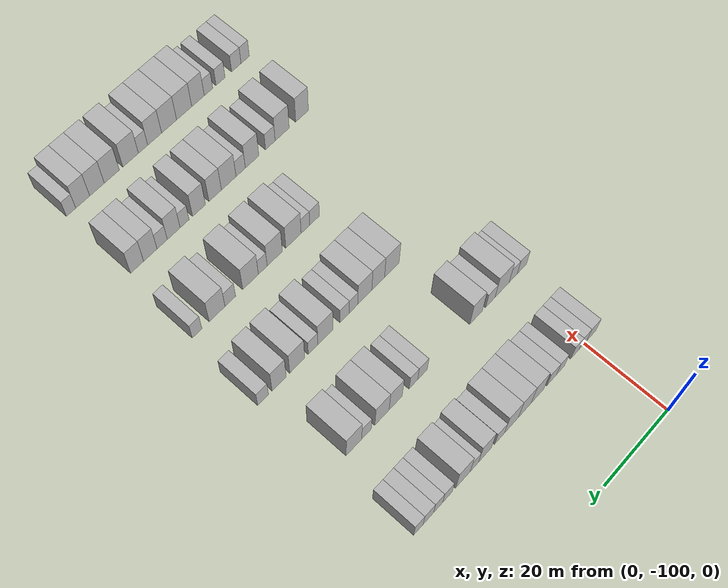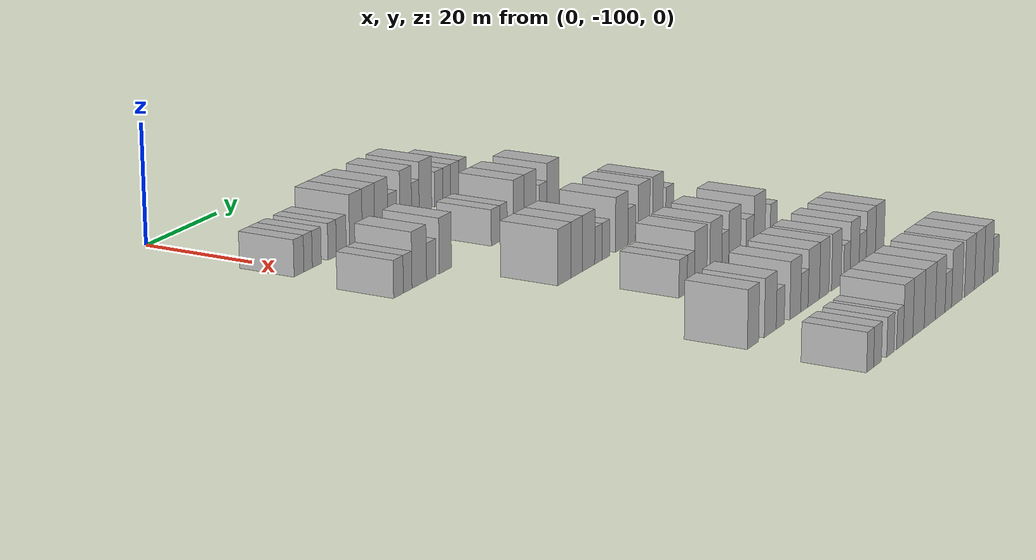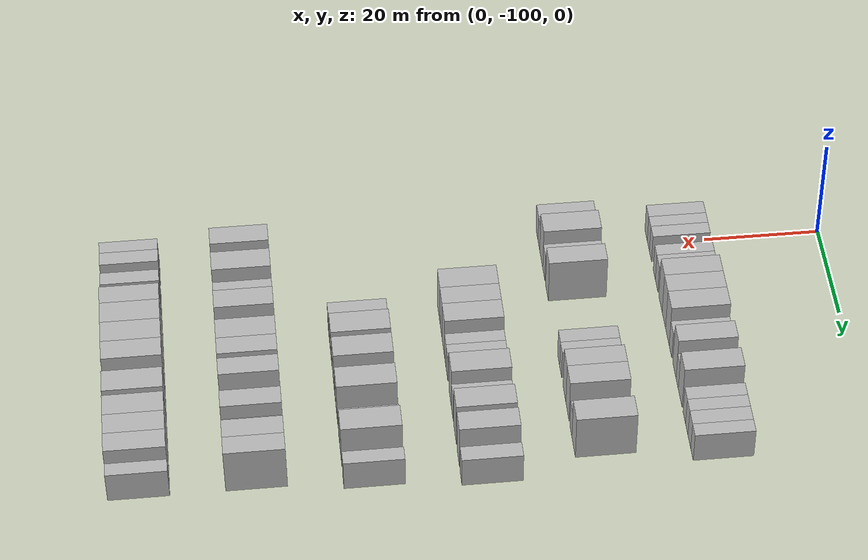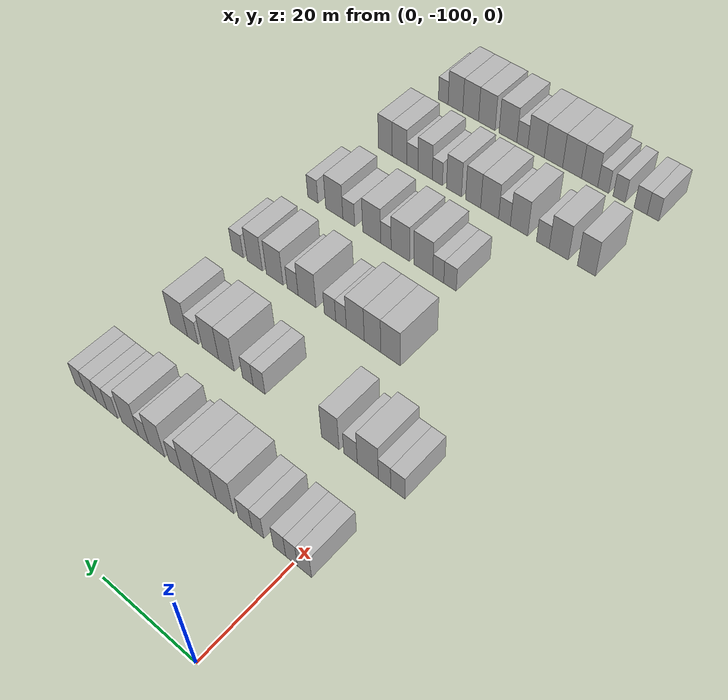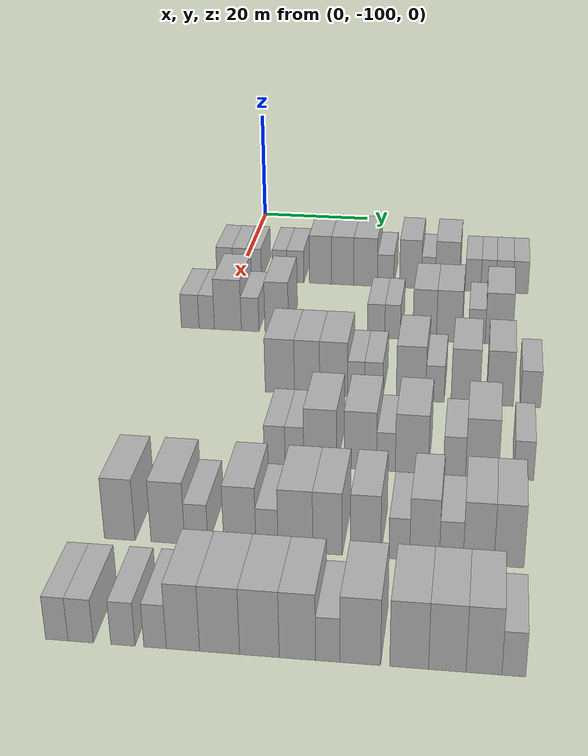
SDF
<sdf version="1.6">
 <world name="default">
  <model name="building_62">
   <static>1</static>
   <pose>25.0000 -102.1575 0 0.000000 0.000000 0.000000</pose>
   <link name="link">
    <pose>0 0 3.00 0 0 0</pose>
    <collision name="collision"><geometry><box><size>10.0000 2.8678 6.0000</size></box></geometry></collision>
    <visual name="visual">
     <cast_shadows>0</cast_shadows>
     <geometry><box><size>10.0000 2.8678 6.0000</size></box></geometry>
     <material>
      <script>
       <uri>model://HANNAS_wall/materials/scripts</uri>
       <uri>model://HANNAS_wall/materials/textures</uri>
       <name>vrc/HANNAS_wall</name>
      </script>
     </material>
    </visual>
   </link>
  </model>
  <model name="building_63">
   <static>1</static>
   <pose>25.0000 -99.5083 0 0.000000 0.000000 0.000000</pose>
   <link name="link">
    <pose>0 0 3.00 0 0 0</pose>
    <collision name="collision"><geometry><box><size>10.0000 2.4305 6.0000</size></box></geometry></collision>
    <visual name="visual">
     <cast_shadows>0</cast_shadows>
     <geometry><box><size>10.0000 2.4305 6.0000</size></box></geometry>
     <material>
      <script>
       <uri>model://HANNAS_wall/materials/scripts</uri>
       <uri>model://HANNAS_wall/materials/textures</uri>
       <name>vrc/HANNAS_wall</name>
      </script>
     </material>
    </visual>
   </link>
  </model>
  <model name="building_64">
   <static>1</static>
   <pose>25.0000 -96.9823 0 0.000000 0.000000 0.000000</pose>
   <link name="link">
    <pose>0 0 3.00 0 0 0</pose>
    <collision name="collision"><geometry><box><size>10.0000 2.6214 6.0000</size></box></geometry></collision>
    <visual name="visual">
     <cast_shadows>0</cast_shadows>
     <geometry><box><size>10.0000 2.6214 6.0000</size></box></geometry>
     <material>
      <script>
       <uri>model://HANNAS_wall/materials/scripts</uri>
       <uri>model://HANNAS_wall/materials/textures</uri>
       <name>vrc/HANNAS_wall</name>
      </script>
     </material>
    </visual>
   </link>
  </model>
  <model name="building_65">
   <static>1</static>
   <pose>25.0000 -92.4248 0 0.000000 0.000000 0.000000</pose>
   <link name="link">
    <pose>0 0 3.00 0 0 0</pose>
    <collision name="collision"><geometry><box><size>10.0000 2.4937 6.0000</size></box></geometry></collision>
    <visual name="visual">
     <cast_shadows>0</cast_shadows>
     <geometry><box><size>10.0000 2.4937 6.0000</size></box></geometry>
     <material>
      <script>
       <uri>model://HANNAS_wall/materials/scripts</uri>
       <uri>model://HANNAS_wall/materials/textures</uri>
       <name>vrc/HANNAS_wall</name>
      </script>
     </material>
    </visual>
   </link>
  </model>
  <model name="building_66">
   <static>1</static>
   <pose>25.0000 -89.6895 0 0.000000 0.000000 0.000000</pose>
   <link name="link">
    <pose>0 0 3.00 0 0 0</pose>
    <collision name="collision"><geometry><box><size>10.0000 2.9769 6.0000</size></box></geometry></collision>
    <visual name="visual">
     <cast_shadows>0</cast_shadows>
     <geometry><box><size>10.0000 2.9769 6.0000</size></box></geometry>
     <material>
      <script>
       <uri>model://HANNAS_wall/materials/scripts</uri>
       <uri>model://HANNAS_wall/materials/textures</uri>
       <name>vrc/HANNAS_wall</name>
      </script>
     </material>
    </visual>
   </link>
  </model>
  <model name="building_67">
   <static>1</static>
   <pose>25.0000 -85.2554 0 0.000000 0.000000 0.000000</pose>
   <link name="link">
    <pose>0 0 4.50 0 0 0</pose>
    <collision name="collision"><geometry><box><size>10.0000 3.8913 9.0000</size></box></geometry></collision>
    <visual name="visual">
     <cast_shadows>0</cast_shadows>
     <geometry><box><size>10.0000 3.8913 9.0000</size></box></geometry>
     <material>
      <script>
       <uri>model://HANNAS_wall/materials/scripts</uri>
       <uri>model://HANNAS_wall/materials/textures</uri>
       <name>vrc/HANNAS_wall</name>
      </script>
     </material>
    </visual>
   </link>
  </model>
  <model name="building_68">
   <static>1</static>
   <pose>25.0000 -81.3794 0 0.000000 0.000000 0.000000</pose>
   <link name="link">
    <pose>0 0 4.50 0 0 0</pose>
    <collision name="collision"><geometry><box><size>10.0000 3.8607 9.0000</size></box></geometry></collision>
    <visual name="visual">
     <cast_shadows>0</cast_shadows>
     <geometry><box><size>10.0000 3.8607 9.0000</size></box></geometry>
     <material>
      <script>
       <uri>model://HANNAS_wall/materials/scripts</uri>
       <uri>model://HANNAS_wall/materials/textures</uri>
       <name>vrc/HANNAS_wall</name>
      </script>
     </material>
    </visual>
   </link>
  </model>
  <model name="building_69">
   <static>1</static>
   <pose>25.0000 -77.3965 0 0.000000 0.000000 0.000000</pose>
   <link name="link">
    <pose>0 0 4.50 0 0 0</pose>
    <collision name="collision"><geometry><box><size>10.0000 4.1051 9.0000</size></box></geometry></collision>
    <visual name="visual">
     <cast_shadows>0</cast_shadows>
     <geometry><box><size>10.0000 4.1051 9.0000</size></box></geometry>
     <material>
      <script>
       <uri>model://HANNAS_wall/materials/scripts</uri>
       <uri>model://HANNAS_wall/materials/textures</uri>
       <name>vrc/HANNAS_wall</name>
      </script>
     </material>
    </visual>
   </link>
  </model>
  <model name="building_70">
   <static>1</static>
   <pose>25.0000 -73.9248 0 0.000000 0.000000 0.000000</pose>
   <link name="link">
    <pose>0 0 3.00 0 0 0</pose>
    <collision name="collision"><geometry><box><size>10.0000 2.8384 6.0000</size></box></geometry></collision>
    <visual name="visual">
     <cast_shadows>0</cast_shadows>
     <geometry><box><size>10.0000 2.8384 6.0000</size></box></geometry>
     <material>
      <script>
       <uri>model://HANNAS_wall/materials/scripts</uri>
       <uri>model://HANNAS_wall/materials/textures</uri>
       <name>vrc/HANNAS_wall</name>
      </script>
     </material>
    </visual>
   </link>
  </model>
  <model name="building_71">
   <static>1</static>
   <pose>25.0000 -69.6170 0 0.000000 0.000000 0.000000</pose>
   <link name="link">
    <pose>0 0 4.50 0 0 0</pose>
    <collision name="collision"><geometry><box><size>10.0000 3.7770 9.0000</size></box></geometry></collision>
    <visual name="visual">
     <cast_shadows>0</cast_shadows>
     <geometry><box><size>10.0000 3.7770 9.0000</size></box></geometry>
     <material>
      <script>
       <uri>model://HANNAS_wall/materials/scripts</uri>
       <uri>model://HANNAS_wall/materials/textures</uri>
       <name>vrc/HANNAS_wall</name>
      </script>
     </material>
    </visual>
   </link>
  </model>
  <model name="building_72">
   <static>1</static>
   <pose>25.0000 -66.5165 0 0.000000 0.000000 0.000000</pose>
   <link name="link">
    <pose>0 0 3.00 0 0 0</pose>
    <collision name="collision"><geometry><box><size>10.0000 2.4241 6.0000</size></box></geometry></collision>
    <visual name="visual">
     <cast_shadows>0</cast_shadows>
     <geometry><box><size>10.0000 2.4241 6.0000</size></box></geometry>
     <material>
      <script>
       <uri>model://HANNAS_wall/materials/scripts</uri>
       <uri>model://HANNAS_wall/materials/textures</uri>
       <name>vrc/HANNAS_wall</name>
      </script>
     </material>
    </visual>
   </link>
  </model>
  <model name="building_73">
   <static>1</static>
   <pose>25.0000 -63.2400 0 0.000000 0.000000 0.000000</pose>
   <link name="link">
    <pose>0 0 4.50 0 0 0</pose>
    <collision name="collision"><geometry><box><size>10.0000 4.1287 9.0000</size></box></geometry></collision>
    <visual name="visual">
     <cast_shadows>0</cast_shadows>
     <geometry><box><size>10.0000 4.1287 9.0000</size></box></geometry>
     <material>
      <script>
       <uri>model://HANNAS_wall/materials/scripts</uri>
       <uri>model://HANNAS_wall/materials/textures</uri>
       <name>vrc/HANNAS_wall</name>
      </script>
     </material>
    </visual>
   </link>
  </model>
  <model name="building_74">
   <static>1</static>
   <pose>25.0000 -58.8305 0 0.000000 0.000000 0.000000</pose>
   <link name="link">
    <pose>0 0 3.00 0 0 0</pose>
    <collision name="collision"><geometry><box><size>10.0000 2.6903 6.0000</size></box></geometry></collision>
    <visual name="visual">
     <cast_shadows>0</cast_shadows>
     <geometry><box><size>10.0000 2.6903 6.0000</size></box></geometry>
     <material>
      <script>
       <uri>model://HANNAS_wall/materials/scripts</uri>
       <uri>model://HANNAS_wall/materials/textures</uri>
       <name>vrc/HANNAS_wall</name>
      </script>
     </material>
    </visual>
   </link>
  </model>
  <model name="building_75">
   <static>1</static>
   <pose>25.0000 -56.2047 0 0.000000 0.000000 0.000000</pose>
   <link name="link">
    <pose>0 0 3.00 0 0 0</pose>
    <collision name="collision"><geometry><box><size>10.0000 2.5614 6.0000</size></box></geometry></collision>
    <visual name="visual">
     <cast_shadows>0</cast_shadows>
     <geometry><box><size>10.0000 2.5614 6.0000</size></box></geometry>
     <material>
      <script>
       <uri>model://HANNAS_wall/materials/scripts</uri>
       <uri>model://HANNAS_wall/materials/textures</uri>
       <name>vrc/HANNAS_wall</name>
      </script>
     </material>
    </visual>
   </link>
  </model>
  <model name="building_76">
   <static>1</static>
   <pose>25.0000 -53.4723 0 0.000000 0.000000 0.000000</pose>
   <link name="link">
    <pose>0 0 3.00 0 0 0</pose>
    <collision name="collision"><geometry><box><size>10.0000 2.9032 6.0000</size></box></geometry></collision>
    <visual name="visual">
     <cast_shadows>0</cast_shadows>
     <geometry><box><size>10.0000 2.9032 6.0000</size></box></geometry>
     <material>
      <script>
       <uri>model://HANNAS_wall/materials/scripts</uri>
       <uri>model://HANNAS_wall/materials/textures</uri>
       <name>vrc/HANNAS_wall</name>
      </script>
     </material>
    </visual>
   </link>
  </model>
  <model name="building_77">
   <static>1</static>
   <pose>25.0000 -50.7224 0 0.000000 0.000000 0.000000</pose>
   <link name="link">
    <pose>0 0 3.00 0 0 0</pose>
    <collision name="collision"><geometry><box><size>10.0000 2.5966 6.0000</size></box></geometry></collision>
    <visual name="visual">
     <cast_shadows>0</cast_shadows>
     <geometry><box><size>10.0000 2.5966 6.0000</size></box></geometry>
     <material>
      <script>
       <uri>model://HANNAS_wall/materials/scripts</uri>
       <uri>model://HANNAS_wall/materials/textures</uri>
       <name>vrc/HANNAS_wall</name>
      </script>
     </material>
    </visual>
   </link>
  </model>
  <model name="building_244">
   <static>1</static>
   <pose>44.0000 -104.2253 0 0.000000 0.000000 0.000000</pose>
   <link name="link">
    <pose>0 0 3.00 0 0 0</pose>
    <collision name="collision"><geometry><box><size>10.0000 2.9297 6.0000</size></box></geometry></collision>
    <visual name="visual">
     <cast_shadows>0</cast_shadows>
     <geometry><box><size>10.0000 2.9297 6.0000</size></box></geometry>
     <material>
      <script>
       <uri>model://HANNAS_wall/materials/scripts</uri>
       <uri>model://HANNAS_wall/materials/textures</uri>
       <name>vrc/HANNAS_wall</name>
      </script>
     </material>
    </visual>
   </link>
  </model>
  <model name="building_245">
   <static>1</static>
   <pose>44.0000 -101.4820 0 0.000000 0.000000 0.000000</pose>
   <link name="link">
    <pose>0 0 3.00 0 0 0</pose>
    <collision name="collision"><geometry><box><size>10.0000 2.5571 6.0000</size></box></geometry></collision>
    <visual name="visual">
     <cast_shadows>0</cast_shadows>
     <geometry><box><size>10.0000 2.5571 6.0000</size></box></geometry>
     <material>
      <script>
       <uri>model://HANNAS_wall/materials/scripts</uri>
       <uri>model://HANNAS_wall/materials/textures</uri>
       <name>vrc/HANNAS_wall</name>
      </script>
     </material>
    </visual>
   </link>
  </model>
  <model name="building_246">
   <static>1</static>
   <pose>44.0000 -97.9860 0 0.000000 0.000000 0.000000</pose>
   <link name="link">
    <pose>0 0 4.50 0 0 0</pose>
    <collision name="collision"><geometry><box><size>10.0000 4.4347 9.0000</size></box></geometry></collision>
    <visual name="visual">
     <cast_shadows>0</cast_shadows>
     <geometry><box><size>10.0000 4.4347 9.0000</size></box></geometry>
     <material>
      <script>
       <uri>model://HANNAS_wall/materials/scripts</uri>
       <uri>model://HANNAS_wall/materials/textures</uri>
       <name>vrc/HANNAS_wall</name>
      </script>
     </material>
    </visual>
   </link>
  </model>
  <model name="building_247">
   <static>1</static>
   <pose>44.0000 -94.3236 0 0.000000 0.000000 0.000000</pose>
   <link name="link">
    <pose>0 0 3.00 0 0 0</pose>
    <collision name="collision"><geometry><box><size>10.0000 2.8900 6.0000</size></box></geometry></collision>
    <visual name="visual">
     <cast_shadows>0</cast_shadows>
     <geometry><box><size>10.0000 2.8900 6.0000</size></box></geometry>
     <material>
      <script>
       <uri>model://HANNAS_wall/materials/scripts</uri>
       <uri>model://HANNAS_wall/materials/textures</uri>
       <name>vrc/HANNAS_wall</name>
      </script>
     </material>
    </visual>
   </link>
  </model>
  <model name="building_248">
   <static>1</static>
   <pose>44.0000 -89.9534 0 0.000000 0.000000 0.000000</pose>
   <link name="link">
    <pose>0 0 4.50 0 0 0</pose>
    <collision name="collision"><geometry><box><size>10.0000 3.8505 9.0000</size></box></geometry></collision>
    <visual name="visual">
     <cast_shadows>0</cast_shadows>
     <geometry><box><size>10.0000 3.8505 9.0000</size></box></geometry>
     <material>
      <script>
       <uri>model://HANNAS_wall/materials/scripts</uri>
       <uri>model://HANNAS_wall/materials/textures</uri>
       <name>vrc/HANNAS_wall</name>
      </script>
     </material>
    </visual>
   </link>
  </model>
  <model name="building_249">
   <static>1</static>
   <pose>44.0000 -73.8384 0 0.000000 0.000000 0.000000</pose>
   <link name="link">
    <pose>0 0 3.00 0 0 0</pose>
    <collision name="collision"><geometry><box><size>10.0000 2.7932 6.0000</size></box></geometry></collision>
    <visual name="visual">
     <cast_shadows>0</cast_shadows>
     <geometry><box><size>10.0000 2.7932 6.0000</size></box></geometry>
     <material>
      <script>
       <uri>model://HANNAS_wall/materials/scripts</uri>
       <uri>model://HANNAS_wall/materials/textures</uri>
       <name>vrc/HANNAS_wall</name>
      </script>
     </material>
    </visual>
   </link>
  </model>
  <model name="building_250">
   <static>1</static>
   <pose>44.0000 -71.1881 0 0.000000 0.000000 0.000000</pose>
   <link name="link">
    <pose>0 0 3.00 0 0 0</pose>
    <collision name="collision"><geometry><box><size>10.0000 2.5074 6.0000</size></box></geometry></collision>
    <visual name="visual">
     <cast_shadows>0</cast_shadows>
     <geometry><box><size>10.0000 2.5074 6.0000</size></box></geometry>
     <material>
      <script>
       <uri>model://HANNAS_wall/materials/scripts</uri>
       <uri>model://HANNAS_wall/materials/textures</uri>
       <name>vrc/HANNAS_wall</name>
      </script>
     </material>
    </visual>
   </link>
  </model>
  <model name="building_251">
   <static>1</static>
   <pose>44.0000 -66.0560 0 0.000000 0.000000 0.000000</pose>
   <link name="link">
    <pose>0 0 4.50 0 0 0</pose>
    <collision name="collision"><geometry><box><size>10.0000 3.7569 9.0000</size></box></geometry></collision>
    <visual name="visual">
     <cast_shadows>0</cast_shadows>
     <geometry><box><size>10.0000 3.7569 9.0000</size></box></geometry>
     <material>
      <script>
       <uri>model://HANNAS_wall/materials/scripts</uri>
       <uri>model://HANNAS_wall/materials/textures</uri>
       <name>vrc/HANNAS_wall</name>
      </script>
     </material>
    </visual>
   </link>
  </model>
  <model name="building_252">
   <static>1</static>
   <pose>44.0000 -62.1483 0 0.000000 0.000000 0.000000</pose>
   <link name="link">
    <pose>0 0 4.50 0 0 0</pose>
    <collision name="collision"><geometry><box><size>10.0000 4.0585 9.0000</size></box></geometry></collision>
    <visual name="visual">
     <cast_shadows>0</cast_shadows>
     <geometry><box><size>10.0000 4.0585 9.0000</size></box></geometry>
     <material>
      <script>
       <uri>model://HANNAS_wall/materials/scripts</uri>
       <uri>model://HANNAS_wall/materials/textures</uri>
       <name>vrc/HANNAS_wall</name>
      </script>
     </material>
    </visual>
   </link>
  </model>
  <model name="building_253">
   <static>1</static>
   <pose>44.0000 -57.7681 0 0.000000 0.000000 0.000000</pose>
   <link name="link">
    <pose>0 0 3.00 0 0 0</pose>
    <collision name="collision"><geometry><box><size>10.0000 2.7018 6.0000</size></box></geometry></collision>
    <visual name="visual">
     <cast_shadows>0</cast_shadows>
     <geometry><box><size>10.0000 2.7018 6.0000</size></box></geometry>
     <material>
      <script>
       <uri>model://HANNAS_wall/materials/scripts</uri>
       <uri>model://HANNAS_wall/materials/textures</uri>
       <name>vrc/HANNAS_wall</name>
      </script>
     </material>
    </visual>
   </link>
  </model>
  <model name="building_254">
   <static>1</static>
   <pose>44.0000 -54.2494 0 0.000000 0.000000 0.000000</pose>
   <link name="link">
    <pose>0 0 4.50 0 0 0</pose>
    <collision name="collision"><geometry><box><size>10.0000 4.3356 9.0000</size></box></geometry></collision>
    <visual name="visual">
     <cast_shadows>0</cast_shadows>
     <geometry><box><size>10.0000 4.3356 9.0000</size></box></geometry>
     <material>
      <script>
       <uri>model://HANNAS_wall/materials/scripts</uri>
       <uri>model://HANNAS_wall/materials/textures</uri>
       <name>vrc/HANNAS_wall</name>
      </script>
     </material>
    </visual>
   </link>
  </model>
  <model name="building_406">
   <static>1</static>
   <pose>63.0000 -86.4726 0 0.000000 0.000000 0.000000</pose>
   <link name="link">
    <pose>0 0 4.50 0 0 0</pose>
    <collision name="collision"><geometry><box><size>10.0000 4.3871 9.0000</size></box></geometry></collision>
    <visual name="visual">
     <cast_shadows>0</cast_shadows>
     <geometry><box><size>10.0000 4.3871 9.0000</size></box></geometry>
     <material>
      <script>
       <uri>model://HANNAS_wall/materials/scripts</uri>
       <uri>model://HANNAS_wall/materials/textures</uri>
       <name>vrc/HANNAS_wall</name>
      </script>
     </material>
    </visual>
   </link>
  </model>
  <model name="building_407">
   <static>1</static>
   <pose>63.0000 -82.3830 0 0.000000 0.000000 0.000000</pose>
   <link name="link">
    <pose>0 0 4.50 0 0 0</pose>
    <collision name="collision"><geometry><box><size>10.0000 3.7921 9.0000</size></box></geometry></collision>
    <visual name="visual">
     <cast_shadows>0</cast_shadows>
     <geometry><box><size>10.0000 3.7921 9.0000</size></box></geometry>
     <material>
      <script>
       <uri>model://HANNAS_wall/materials/scripts</uri>
       <uri>model://HANNAS_wall/materials/textures</uri>
       <name>vrc/HANNAS_wall</name>
      </script>
     </material>
    </visual>
   </link>
  </model>
  <model name="building_408">
   <static>1</static>
   <pose>63.0000 -78.4022 0 0.000000 0.000000 0.000000</pose>
   <link name="link">
    <pose>0 0 4.50 0 0 0</pose>
    <collision name="collision"><geometry><box><size>10.0000 4.1696 9.0000</size></box></geometry></collision>
    <visual name="visual">
     <cast_shadows>0</cast_shadows>
     <geometry><box><size>10.0000 4.1696 9.0000</size></box></geometry>
     <material>
      <script>
       <uri>model://HANNAS_wall/materials/scripts</uri>
       <uri>model://HANNAS_wall/materials/textures</uri>
       <name>vrc/HANNAS_wall</name>
      </script>
     </material>
    </visual>
   </link>
  </model>
  <model name="building_409">
   <static>1</static>
   <pose>63.0000 -75.0799 0 0.000000 0.000000 0.000000</pose>
   <link name="link">
    <pose>0 0 3.00 0 0 0</pose>
    <collision name="collision"><geometry><box><size>10.0000 2.4748 6.0000</size></box></geometry></collision>
    <visual name="visual">
     <cast_shadows>0</cast_shadows>
     <geometry><box><size>10.0000 2.4748 6.0000</size></box></geometry>
     <material>
      <script>
       <uri>model://HANNAS_wall/materials/scripts</uri>
       <uri>model://HANNAS_wall/materials/textures</uri>
       <name>vrc/HANNAS_wall</name>
      </script>
     </material>
    </visual>
   </link>
  </model>
  <model name="building_410">
   <static>1</static>
   <pose>63.0000 -72.4850 0 0.000000 0.000000 0.000000</pose>
   <link name="link">
    <pose>0 0 3.00 0 0 0</pose>
    <collision name="collision"><geometry><box><size>10.0000 2.7151 6.0000</size></box></geometry></collision>
    <visual name="visual">
     <cast_shadows>0</cast_shadows>
     <geometry><box><size>10.0000 2.7151 6.0000</size></box></geometry>
     <material>
      <script>
       <uri>model://HANNAS_wall/materials/scripts</uri>
       <uri>model://HANNAS_wall/materials/textures</uri>
       <name>vrc/HANNAS_wall</name>
      </script>
     </material>
    </visual>
   </link>
  </model>
  <model name="building_411">
   <static>1</static>
   <pose>63.0000 -66.9564 0 0.000000 0.000000 0.000000</pose>
   <link name="link">
    <pose>0 0 4.50 0 0 0</pose>
    <collision name="collision"><geometry><box><size>10.0000 4.3421 9.0000</size></box></geometry></collision>
    <visual name="visual">
     <cast_shadows>0</cast_shadows>
     <geometry><box><size>10.0000 4.3421 9.0000</size></box></geometry>
     <material>
      <script>
       <uri>model://HANNAS_wall/materials/scripts</uri>
       <uri>model://HANNAS_wall/materials/textures</uri>
       <name>vrc/HANNAS_wall</name>
      </script>
     </material>
    </visual>
   </link>
  </model>
  <model name="building_412">
   <static>1</static>
   <pose>63.0000 -63.4266 0 0.000000 0.000000 0.000000</pose>
   <link name="link">
    <pose>0 0 3.00 0 0 0</pose>
    <collision name="collision"><geometry><box><size>10.0000 2.7175 6.0000</size></box></geometry></collision>
    <visual name="visual">
     <cast_shadows>0</cast_shadows>
     <geometry><box><size>10.0000 2.7175 6.0000</size></box></geometry>
     <material>
      <script>
       <uri>model://HANNAS_wall/materials/scripts</uri>
       <uri>model://HANNAS_wall/materials/textures</uri>
       <name>vrc/HANNAS_wall</name>
      </script>
     </material>
    </visual>
   </link>
  </model>
  <model name="building_413">
   <static>1</static>
   <pose>63.0000 -58.9643 0 0.000000 0.000000 0.000000</pose>
   <link name="link">
    <pose>0 0 4.50 0 0 0</pose>
    <collision name="collision"><geometry><box><size>10.0000 4.2070 9.0000</size></box></geometry></collision>
    <visual name="visual">
     <cast_shadows>0</cast_shadows>
     <geometry><box><size>10.0000 4.2070 9.0000</size></box></geometry>
     <material>
      <script>
       <uri>model://HANNAS_wall/materials/scripts</uri>
       <uri>model://HANNAS_wall/materials/textures</uri>
       <name>vrc/HANNAS_wall</name>
      </script>
     </material>
    </visual>
   </link>
  </model>
  <model name="building_414">
   <static>1</static>
   <pose>63.0000 -53.9101 0 0.000000 0.000000 0.000000</pose>
   <link name="link">
    <pose>0 0 4.50 0 0 0</pose>
    <collision name="collision"><geometry><box><size>10.0000 3.9015 9.0000</size></box></geometry></collision>
    <visual name="visual">
     <cast_shadows>0</cast_shadows>
     <geometry><box><size>10.0000 3.9015 9.0000</size></box></geometry>
     <material>
      <script>
       <uri>model://HANNAS_wall/materials/scripts</uri>
       <uri>model://HANNAS_wall/materials/textures</uri>
       <name>vrc/HANNAS_wall</name>
      </script>
     </material>
    </visual>
   </link>
  </model>
  <model name="building_415">
   <static>1</static>
   <pose>63.0000 -49.4853 0 0.000000 0.000000 0.000000</pose>
   <link name="link">
    <pose>0 0 3.00 0 0 0</pose>
    <collision name="collision"><geometry><box><size>10.0000 2.9480 6.0000</size></box></geometry></collision>
    <visual name="visual">
     <cast_shadows>0</cast_shadows>
     <geometry><box><size>10.0000 2.9480 6.0000</size></box></geometry>
     <material>
      <script>
       <uri>model://HANNAS_wall/materials/scripts</uri>
       <uri>model://HANNAS_wall/materials/textures</uri>
       <name>vrc/HANNAS_wall</name>
      </script>
     </material>
    </visual>
   </link>
  </model>
  <model name="building_573">
   <static>1</static>
   <pose>82.0000 -84.2005 0 0.000000 0.000000 0.000000</pose>
   <link name="link">
    <pose>0 0 3.00 0 0 0</pose>
    <collision name="collision"><geometry><box><size>10.0000 2.8582 6.0000</size></box></geometry></collision>
    <visual name="visual">
     <cast_shadows>0</cast_shadows>
     <geometry><box><size>10.0000 2.8582 6.0000</size></box></geometry>
     <material>
      <script>
       <uri>model://HANNAS_wall/materials/scripts</uri>
       <uri>model://HANNAS_wall/materials/textures</uri>
       <name>vrc/HANNAS_wall</name>
      </script>
     </material>
    </visual>
   </link>
  </model>
  <model name="building_574">
   <static>1</static>
   <pose>82.0000 -81.4921 0 0.000000 0.000000 0.000000</pose>
   <link name="link">
    <pose>0 0 3.00 0 0 0</pose>
    <collision name="collision"><geometry><box><size>10.0000 2.5586 6.0000</size></box></geometry></collision>
    <visual name="visual">
     <cast_shadows>0</cast_shadows>
     <geometry><box><size>10.0000 2.5586 6.0000</size></box></geometry>
     <material>
      <script>
       <uri>model://HANNAS_wall/materials/scripts</uri>
       <uri>model://HANNAS_wall/materials/textures</uri>
       <name>vrc/HANNAS_wall</name>
      </script>
     </material>
    </visual>
   </link>
  </model>
  <model name="building_575">
   <static>1</static>
   <pose>82.0000 -77.9721 0 0.000000 0.000000 0.000000</pose>
   <link name="link">
    <pose>0 0 4.50 0 0 0</pose>
    <collision name="collision"><geometry><box><size>10.0000 4.4815 9.0000</size></box></geometry></collision>
    <visual name="visual">
     <cast_shadows>0</cast_shadows>
     <geometry><box><size>10.0000 4.4815 9.0000</size></box></geometry>
     <material>
      <script>
       <uri>model://HANNAS_wall/materials/scripts</uri>
       <uri>model://HANNAS_wall/materials/textures</uri>
       <name>vrc/HANNAS_wall</name>
      </script>
     </material>
    </visual>
   </link>
  </model>
  <model name="building_576">
   <static>1</static>
   <pose>82.0000 -72.5264 0 0.000000 0.000000 0.000000</pose>
   <link name="link">
    <pose>0 0 4.50 0 0 0</pose>
    <collision name="collision"><geometry><box><size>10.0000 4.4099 9.0000</size></box></geometry></collision>
    <visual name="visual">
     <cast_shadows>0</cast_shadows>
     <geometry><box><size>10.0000 4.4099 9.0000</size></box></geometry>
     <material>
      <script>
       <uri>model://HANNAS_wall/materials/scripts</uri>
       <uri>model://HANNAS_wall/materials/textures</uri>
       <name>vrc/HANNAS_wall</name>
      </script>
     </material>
    </visual>
   </link>
  </model>
  <model name="building_577">
   <static>1</static>
   <pose>82.0000 -69.0579 0 0.000000 0.000000 0.000000</pose>
   <link name="link">
    <pose>0 0 3.00 0 0 0</pose>
    <collision name="collision"><geometry><box><size>10.0000 2.5272 6.0000</size></box></geometry></collision>
    <visual name="visual">
     <cast_shadows>0</cast_shadows>
     <geometry><box><size>10.0000 2.5272 6.0000</size></box></geometry>
     <material>
      <script>
       <uri>model://HANNAS_wall/materials/scripts</uri>
       <uri>model://HANNAS_wall/materials/textures</uri>
       <name>vrc/HANNAS_wall</name>
      </script>
     </material>
    </visual>
   </link>
  </model>
  <model name="building_578">
   <static>1</static>
   <pose>82.0000 -65.5610 0 0.000000 0.000000 0.000000</pose>
   <link name="link">
    <pose>0 0 4.50 0 0 0</pose>
    <collision name="collision"><geometry><box><size>10.0000 4.4666 9.0000</size></box></geometry></collision>
    <visual name="visual">
     <cast_shadows>0</cast_shadows>
     <geometry><box><size>10.0000 4.4666 9.0000</size></box></geometry>
     <material>
      <script>
       <uri>model://HANNAS_wall/materials/scripts</uri>
       <uri>model://HANNAS_wall/materials/textures</uri>
       <name>vrc/HANNAS_wall</name>
      </script>
     </material>
    </visual>
   </link>
  </model>
  <model name="building_579">
   <static>1</static>
   <pose>82.0000 -59.8371 0 0.000000 0.000000 0.000000</pose>
   <link name="link">
    <pose>0 0 3.00 0 0 0</pose>
    <collision name="collision"><geometry><box><size>10.0000 2.9813 6.0000</size></box></geometry></collision>
    <visual name="visual">
     <cast_shadows>0</cast_shadows>
     <geometry><box><size>10.0000 2.9813 6.0000</size></box></geometry>
     <material>
      <script>
       <uri>model://HANNAS_wall/materials/scripts</uri>
       <uri>model://HANNAS_wall/materials/textures</uri>
       <name>vrc/HANNAS_wall</name>
      </script>
     </material>
    </visual>
   </link>
  </model>
  <model name="building_580">
   <static>1</static>
   <pose>82.0000 -56.1471 0 0.000000 0.000000 0.000000</pose>
   <link name="link">
    <pose>0 0 4.50 0 0 0</pose>
    <collision name="collision"><geometry><box><size>10.0000 4.3986 9.0000</size></box></geometry></collision>
    <visual name="visual">
     <cast_shadows>0</cast_shadows>
     <geometry><box><size>10.0000 4.3986 9.0000</size></box></geometry>
     <material>
      <script>
       <uri>model://HANNAS_wall/materials/scripts</uri>
       <uri>model://HANNAS_wall/materials/textures</uri>
       <name>vrc/HANNAS_wall</name>
      </script>
     </material>
    </visual>
   </link>
  </model>
  <model name="building_581">
   <static>1</static>
   <pose>82.0000 -50.6122 0 0.000000 0.000000 0.000000</pose>
   <link name="link">
    <pose>0 0 3.00 0 0 0</pose>
    <collision name="collision"><geometry><box><size>10.0000 2.6713 6.0000</size></box></geometry></collision>
    <visual name="visual">
     <cast_shadows>0</cast_shadows>
     <geometry><box><size>10.0000 2.6713 6.0000</size></box></geometry>
     <material>
      <script>
       <uri>model://HANNAS_wall/materials/scripts</uri>
       <uri>model://HANNAS_wall/materials/textures</uri>
       <name>vrc/HANNAS_wall</name>
      </script>
     </material>
    </visual>
   </link>
  </model>
  <model name="building_733">
   <static>1</static>
   <pose>101.0000 -100.6791 0 0.000000 0.000000 0.000000</pose>
   <link name="link">
    <pose>0 0 4.50 0 0 0</pose>
    <collision name="collision"><geometry><box><size>10.0000 3.9294 9.0000</size></box></geometry></collision>
    <visual name="visual">
     <cast_shadows>0</cast_shadows>
     <geometry><box><size>10.0000 3.9294 9.0000</size></box></geometry>
     <material>
      <script>
       <uri>model://HANNAS_wall/materials/scripts</uri>
       <uri>model://HANNAS_wall/materials/textures</uri>
       <name>vrc/HANNAS_wall</name>
      </script>
     </material>
    </visual>
   </link>
  </model>
  <model name="building_734">
   <static>1</static>
   <pose>101.0000 -94.5716 0 0.000000 0.000000 0.000000</pose>
   <link name="link">
    <pose>0 0 4.50 0 0 0</pose>
    <collision name="collision"><geometry><box><size>10.0000 4.2857 9.0000</size></box></geometry></collision>
    <visual name="visual">
     <cast_shadows>0</cast_shadows>
     <geometry><box><size>10.0000 4.2857 9.0000</size></box></geometry>
     <material>
      <script>
       <uri>model://HANNAS_wall/materials/scripts</uri>
       <uri>model://HANNAS_wall/materials/textures</uri>
       <name>vrc/HANNAS_wall</name>
      </script>
     </material>
    </visual>
   </link>
  </model>
  <model name="building_735">
   <static>1</static>
   <pose>101.0000 -90.9733 0 0.000000 0.000000 0.000000</pose>
   <link name="link">
    <pose>0 0 3.00 0 0 0</pose>
    <collision name="collision"><geometry><box><size>10.0000 2.9108 6.0000</size></box></geometry></collision>
    <visual name="visual">
     <cast_shadows>0</cast_shadows>
     <geometry><box><size>10.0000 2.9108 6.0000</size></box></geometry>
     <material>
      <script>
       <uri>model://HANNAS_wall/materials/scripts</uri>
       <uri>model://HANNAS_wall/materials/textures</uri>
       <name>vrc/HANNAS_wall</name>
      </script>
     </material>
    </visual>
   </link>
  </model>
  <model name="building_736">
   <static>1</static>
   <pose>101.0000 -85.5001 0 0.000000 0.000000 0.000000</pose>
   <link name="link">
    <pose>0 0 4.50 0 0 0</pose>
    <collision name="collision"><geometry><box><size>10.0000 4.0357 9.0000</size></box></geometry></collision>
    <visual name="visual">
     <cast_shadows>0</cast_shadows>
     <geometry><box><size>10.0000 4.0357 9.0000</size></box></geometry>
     <material>
      <script>
       <uri>model://HANNAS_wall/materials/scripts</uri>
       <uri>model://HANNAS_wall/materials/textures</uri>
       <name>vrc/HANNAS_wall</name>
      </script>
     </material>
    </visual>
   </link>
  </model>
  <model name="building_737">
   <static>1</static>
   <pose>101.0000 -82.1073 0 0.000000 0.000000 0.000000</pose>
   <link name="link">
    <pose>0 0 3.00 0 0 0</pose>
    <collision name="collision"><geometry><box><size>10.0000 2.7499 6.0000</size></box></geometry></collision>
    <visual name="visual">
     <cast_shadows>0</cast_shadows>
     <geometry><box><size>10.0000 2.7499 6.0000</size></box></geometry>
     <material>
      <script>
       <uri>model://HANNAS_wall/materials/scripts</uri>
       <uri>model://HANNAS_wall/materials/textures</uri>
       <name>vrc/HANNAS_wall</name>
      </script>
     </material>
    </visual>
   </link>
  </model>
  <model name="building_738">
   <static>1</static>
   <pose>101.0000 -78.5834 0 0.000000 0.000000 0.000000</pose>
   <link name="link">
    <pose>0 0 4.50 0 0 0</pose>
    <collision name="collision"><geometry><box><size>10.0000 4.2979 9.0000</size></box></geometry></collision>
    <visual name="visual">
     <cast_shadows>0</cast_shadows>
     <geometry><box><size>10.0000 4.2979 9.0000</size></box></geometry>
     <material>
      <script>
       <uri>model://HANNAS_wall/materials/scripts</uri>
       <uri>model://HANNAS_wall/materials/textures</uri>
       <name>vrc/HANNAS_wall</name>
      </script>
     </material>
    </visual>
   </link>
  </model>
  <model name="building_739">
   <static>1</static>
   <pose>101.0000 -74.6165 0 0.000000 0.000000 0.000000</pose>
   <link name="link">
    <pose>0 0 4.50 0 0 0</pose>
    <collision name="collision"><geometry><box><size>10.0000 3.6359 9.0000</size></box></geometry></collision>
    <visual name="visual">
     <cast_shadows>0</cast_shadows>
     <geometry><box><size>10.0000 3.6359 9.0000</size></box></geometry>
     <material>
      <script>
       <uri>model://HANNAS_wall/materials/scripts</uri>
       <uri>model://HANNAS_wall/materials/textures</uri>
       <name>vrc/HANNAS_wall</name>
      </script>
     </material>
    </visual>
   </link>
  </model>
  <model name="building_740">
   <static>1</static>
   <pose>101.0000 -69.9475 0 0.000000 0.000000 0.000000</pose>
   <link name="link">
    <pose>0 0 4.50 0 0 0</pose>
    <collision name="collision"><geometry><box><size>10.0000 3.7020 9.0000</size></box></geometry></collision>
    <visual name="visual">
     <cast_shadows>0</cast_shadows>
     <geometry><box><size>10.0000 3.7020 9.0000</size></box></geometry>
     <material>
      <script>
       <uri>model://HANNAS_wall/materials/scripts</uri>
       <uri>model://HANNAS_wall/materials/textures</uri>
       <name>vrc/HANNAS_wall</name>
      </script>
     </material>
    </visual>
   </link>
  </model>
  <model name="building_741">
   <static>1</static>
   <pose>101.0000 -65.8264 0 0.000000 0.000000 0.000000</pose>
   <link name="link">
    <pose>0 0 3.00 0 0 0</pose>
    <collision name="collision"><geometry><box><size>10.0000 2.5402 6.0000</size></box></geometry></collision>
    <visual name="visual">
     <cast_shadows>0</cast_shadows>
     <geometry><box><size>10.0000 2.5402 6.0000</size></box></geometry>
     <material>
      <script>
       <uri>model://HANNAS_wall/materials/scripts</uri>
       <uri>model://HANNAS_wall/materials/textures</uri>
       <name>vrc/HANNAS_wall</name>
      </script>
     </material>
    </visual>
   </link>
  </model>
  <model name="building_742">
   <static>1</static>
   <pose>101.0000 -62.7462 0 0.000000 0.000000 0.000000</pose>
   <link name="link">
    <pose>0 0 4.50 0 0 0</pose>
    <collision name="collision"><geometry><box><size>10.0000 3.6202 9.0000</size></box></geometry></collision>
    <visual name="visual">
     <cast_shadows>0</cast_shadows>
     <geometry><box><size>10.0000 3.6202 9.0000</size></box></geometry>
     <material>
      <script>
       <uri>model://HANNAS_wall/materials/scripts</uri>
       <uri>model://HANNAS_wall/materials/textures</uri>
       <name>vrc/HANNAS_wall</name>
      </script>
     </material>
    </visual>
   </link>
  </model>
  <model name="building_743">
   <static>1</static>
   <pose>101.0000 -59.5005 0 0.000000 0.000000 0.000000</pose>
   <link name="link">
    <pose>0 0 3.00 0 0 0</pose>
    <collision name="collision"><geometry><box><size>10.0000 2.8713 6.0000</size></box></geometry></collision>
    <visual name="visual">
     <cast_shadows>0</cast_shadows>
     <geometry><box><size>10.0000 2.8713 6.0000</size></box></geometry>
     <material>
      <script>
       <uri>model://HANNAS_wall/materials/scripts</uri>
       <uri>model://HANNAS_wall/materials/textures</uri>
       <name>vrc/HANNAS_wall</name>
      </script>
     </material>
    </visual>
   </link>
  </model>
  <model name="building_744">
   <static>1</static>
   <pose>101.0000 -56.2009 0 0.000000 0.000000 0.000000</pose>
   <link name="link">
    <pose>0 0 4.50 0 0 0</pose>
    <collision name="collision"><geometry><box><size>10.0000 3.7279 9.0000</size></box></geometry></collision>
    <visual name="visual">
     <cast_shadows>0</cast_shadows>
     <geometry><box><size>10.0000 3.7279 9.0000</size></box></geometry>
     <material>
      <script>
       <uri>model://HANNAS_wall/materials/scripts</uri>
       <uri>model://HANNAS_wall/materials/textures</uri>
       <name>vrc/HANNAS_wall</name>
      </script>
     </material>
    </visual>
   </link>
  </model>
  <model name="building_745">
   <static>1</static>
   <pose>101.0000 -52.5344 0 0.000000 0.000000 0.000000</pose>
   <link name="link">
    <pose>0 0 4.50 0 0 0</pose>
    <collision name="collision"><geometry><box><size>10.0000 3.6050 9.0000</size></box></geometry></collision>
    <visual name="visual">
     <cast_shadows>0</cast_shadows>
     <geometry><box><size>10.0000 3.6050 9.0000</size></box></geometry>
     <material>
      <script>
       <uri>model://HANNAS_wall/materials/scripts</uri>
       <uri>model://HANNAS_wall/materials/textures</uri>
       <name>vrc/HANNAS_wall</name>
      </script>
     </material>
    </visual>
   </link>
  </model>
  <model name="building_908">
   <static>1</static>
   <pose>120.0000 -102.8118 0 0.000000 0.000000 0.000000</pose>
   <link name="link">
    <pose>0 0 3.00 0 0 0</pose>
    <collision name="collision"><geometry><box><size>10.0000 2.5708 6.0000</size></box></geometry></collision>
    <visual name="visual">
     <cast_shadows>0</cast_shadows>
     <geometry><box><size>10.0000 2.5708 6.0000</size></box></geometry>
     <material>
      <script>
       <uri>model://HANNAS_wall/materials/scripts</uri>
       <uri>model://HANNAS_wall/materials/textures</uri>
       <name>vrc/HANNAS_wall</name>
      </script>
     </material>
    </visual>
   </link>
  </model>
  <model name="building_909">
   <static>1</static>
   <pose>120.0000 -100.0713 0 0.000000 0.000000 0.000000</pose>
   <link name="link">
    <pose>0 0 3.00 0 0 0</pose>
    <collision name="collision"><geometry><box><size>10.0000 2.9101 6.0000</size></box></geometry></collision>
    <visual name="visual">
     <cast_shadows>0</cast_shadows>
     <geometry><box><size>10.0000 2.9101 6.0000</size></box></geometry>
     <material>
      <script>
       <uri>model://HANNAS_wall/materials/scripts</uri>
       <uri>model://HANNAS_wall/materials/textures</uri>
       <name>vrc/HANNAS_wall</name>
      </script>
     </material>
    </visual>
   </link>
  </model>
  <model name="building_910">
   <static>1</static>
   <pose>120.0000 -95.2330 0 0.000000 0.000000 0.000000</pose>
   <link name="link">
    <pose>0 0 3.00 0 0 0</pose>
    <collision name="collision"><geometry><box><size>10.0000 2.7665 6.0000</size></box></geometry></collision>
    <visual name="visual">
     <cast_shadows>0</cast_shadows>
     <geometry><box><size>10.0000 2.7665 6.0000</size></box></geometry>
     <material>
      <script>
       <uri>model://HANNAS_wall/materials/scripts</uri>
       <uri>model://HANNAS_wall/materials/textures</uri>
       <name>vrc/HANNAS_wall</name>
      </script>
     </material>
    </visual>
   </link>
  </model>
  <model name="building_911">
   <static>1</static>
   <pose>120.0000 -91.5736 0 0.000000 0.000000 0.000000</pose>
   <link name="link">
    <pose>0 0 3.00 0 0 0</pose>
    <collision name="collision"><geometry><box><size>10.0000 2.5524 6.0000</size></box></geometry></collision>
    <visual name="visual">
     <cast_shadows>0</cast_shadows>
     <geometry><box><size>10.0000 2.5524 6.0000</size></box></geometry>
     <material>
      <script>
       <uri>model://HANNAS_wall/materials/scripts</uri>
       <uri>model://HANNAS_wall/materials/textures</uri>
       <name>vrc/HANNAS_wall</name>
      </script>
     </material>
    </visual>
   </link>
  </model>
  <model name="building_912">
   <static>1</static>
   <pose>120.0000 -88.4151 0 0.000000 0.000000 0.000000</pose>
   <link name="link">
    <pose>0 0 4.50 0 0 0</pose>
    <collision name="collision"><geometry><box><size>10.0000 3.7646 9.0000</size></box></geometry></collision>
    <visual name="visual">
     <cast_shadows>0</cast_shadows>
     <geometry><box><size>10.0000 3.7646 9.0000</size></box></geometry>
     <material>
      <script>
       <uri>model://HANNAS_wall/materials/scripts</uri>
       <uri>model://HANNAS_wall/materials/textures</uri>
       <name>vrc/HANNAS_wall</name>
      </script>
     </material>
    </visual>
   </link>
  </model>
  <model name="building_913">
   <static>1</static>
   <pose>120.0000 -84.2831 0 0.000000 0.000000 0.000000</pose>
   <link name="link">
    <pose>0 0 4.50 0 0 0</pose>
    <collision name="collision"><geometry><box><size>10.0000 4.4996 9.0000</size></box></geometry></collision>
    <visual name="visual">
     <cast_shadows>0</cast_shadows>
     <geometry><box><size>10.0000 4.4996 9.0000</size></box></geometry>
     <material>
      <script>
       <uri>model://HANNAS_wall/materials/scripts</uri>
       <uri>model://HANNAS_wall/materials/textures</uri>
       <name>vrc/HANNAS_wall</name>
      </script>
     </material>
    </visual>
   </link>
  </model>
  <model name="building_914">
   <static>1</static>
   <pose>120.0000 -79.8223 0 0.000000 0.000000 0.000000</pose>
   <link name="link">
    <pose>0 0 4.50 0 0 0</pose>
    <collision name="collision"><geometry><box><size>10.0000 4.4220 9.0000</size></box></geometry></collision>
    <visual name="visual">
     <cast_shadows>0</cast_shadows>
     <geometry><box><size>10.0000 4.4220 9.0000</size></box></geometry>
     <material>
      <script>
       <uri>model://HANNAS_wall/materials/scripts</uri>
       <uri>model://HANNAS_wall/materials/textures</uri>
       <name>vrc/HANNAS_wall</name>
      </script>
     </material>
    </visual>
   </link>
  </model>
  <model name="building_915">
   <static>1</static>
   <pose>120.0000 -75.5966 0 0.000000 0.000000 0.000000</pose>
   <link name="link">
    <pose>0 0 4.50 0 0 0</pose>
    <collision name="collision"><geometry><box><size>10.0000 4.0295 9.0000</size></box></geometry></collision>
    <visual name="visual">
     <cast_shadows>0</cast_shadows>
     <geometry><box><size>10.0000 4.0295 9.0000</size></box></geometry>
     <material>
      <script>
       <uri>model://HANNAS_wall/materials/scripts</uri>
       <uri>model://HANNAS_wall/materials/textures</uri>
       <name>vrc/HANNAS_wall</name>
      </script>
     </material>
    </visual>
   </link>
  </model>
  <model name="building_916">
   <static>1</static>
   <pose>120.0000 -72.2356 0 0.000000 0.000000 0.000000</pose>
   <link name="link">
    <pose>0 0 3.00 0 0 0</pose>
    <collision name="collision"><geometry><box><size>10.0000 2.6925 6.0000</size></box></geometry></collision>
    <visual name="visual">
     <cast_shadows>0</cast_shadows>
     <geometry><box><size>10.0000 2.6925 6.0000</size></box></geometry>
     <material>
      <script>
       <uri>model://HANNAS_wall/materials/scripts</uri>
       <uri>model://HANNAS_wall/materials/textures</uri>
       <name>vrc/HANNAS_wall</name>
      </script>
     </material>
    </visual>
   </link>
  </model>
  <model name="building_917">
   <static>1</static>
   <pose>120.0000 -68.6578 0 0.000000 0.000000 0.000000</pose>
   <link name="link">
    <pose>0 0 4.50 0 0 0</pose>
    <collision name="collision"><geometry><box><size>10.0000 4.4630 9.0000</size></box></geometry></collision>
    <visual name="visual">
     <cast_shadows>0</cast_shadows>
     <geometry><box><size>10.0000 4.4630 9.0000</size></box></geometry>
     <material>
      <script>
       <uri>model://HANNAS_wall/materials/scripts</uri>
       <uri>model://HANNAS_wall/materials/textures</uri>
       <name>vrc/HANNAS_wall</name>
      </script>
     </material>
    </visual>
   </link>
  </model>
  <model name="building_918">
   <static>1</static>
   <pose>120.0000 -63.3102 0 0.000000 0.000000 0.000000</pose>
   <link name="link">
    <pose>0 0 4.50 0 0 0</pose>
    <collision name="collision"><geometry><box><size>10.0000 4.2322 9.0000</size></box></geometry></collision>
    <visual name="visual">
     <cast_shadows>0</cast_shadows>
     <geometry><box><size>10.0000 4.2322 9.0000</size></box></geometry>
     <material>
      <script>
       <uri>model://HANNAS_wall/materials/scripts</uri>
       <uri>model://HANNAS_wall/materials/textures</uri>
       <name>vrc/HANNAS_wall</name>
      </script>
     </material>
    </visual>
   </link>
  </model>
  <model name="building_919">
   <static>1</static>
   <pose>120.0000 -59.1563 0 0.000000 0.000000 0.000000</pose>
   <link name="link">
    <pose>0 0 4.50 0 0 0</pose>
    <collision name="collision"><geometry><box><size>10.0000 4.0757 9.0000</size></box></geometry></collision>
    <visual name="visual">
     <cast_shadows>0</cast_shadows>
     <geometry><box><size>10.0000 4.0757 9.0000</size></box></geometry>
     <material>
      <script>
       <uri>model://HANNAS_wall/materials/scripts</uri>
       <uri>model://HANNAS_wall/materials/textures</uri>
       <name>vrc/HANNAS_wall</name>
      </script>
     </material>
    </visual>
   </link>
  </model>
  <model name="building_920">
   <static>1</static>
   <pose>120.0000 -55.1883 0 0.000000 0.000000 0.000000</pose>
   <link name="link">
    <pose>0 0 4.50 0 0 0</pose>
    <collision name="collision"><geometry><box><size>10.0000 3.8602 9.0000</size></box></geometry></collision>
    <visual name="visual">
     <cast_shadows>0</cast_shadows>
     <geometry><box><size>10.0000 3.8602 9.0000</size></box></geometry>
     <material>
      <script>
       <uri>model://HANNAS_wall/materials/scripts</uri>
       <uri>model://HANNAS_wall/materials/textures</uri>
       <name>vrc/HANNAS_wall</name>
      </script>
     </material>
    </visual>
   </link>
  </model>
  <model name="building_921">
   <static>1</static>
   <pose>120.0000 -51.9754 0 0.000000 0.000000 0.000000</pose>
   <link name="link">
    <pose>0 0 3.00 0 0 0</pose>
    <collision name="collision"><geometry><box><size>10.0000 2.5657 6.0000</size></box></geometry></collision>
    <visual name="visual">
     <cast_shadows>0</cast_shadows>
     <geometry><box><size>10.0000 2.5657 6.0000</size></box></geometry>
     <material>
      <script>
       <uri>model://HANNAS_wall/materials/scripts</uri>
       <uri>model://HANNAS_wall/materials/textures</uri>
       <name>vrc/HANNAS_wall</name>
      </script>
     </material>
    </visual>
   </link>
  </model>
 </world>
</sdf>
